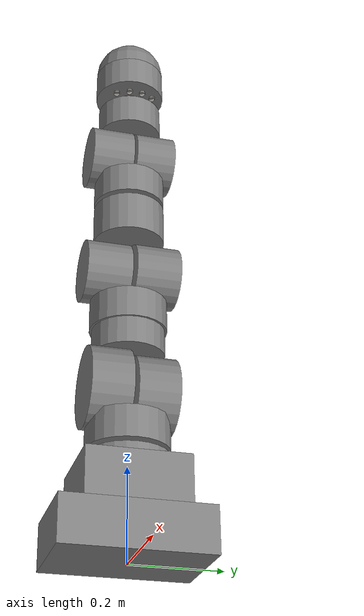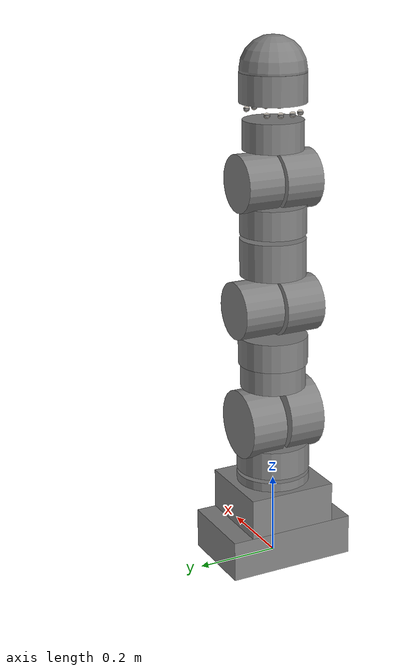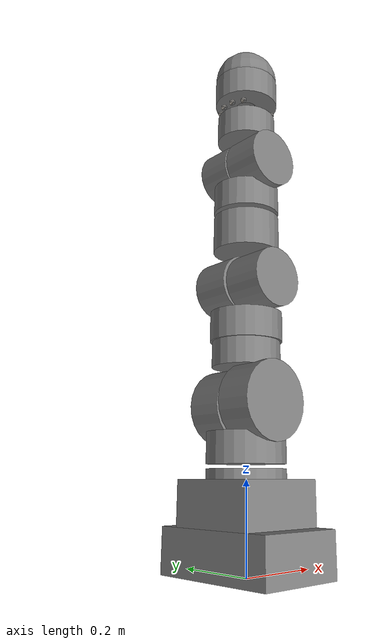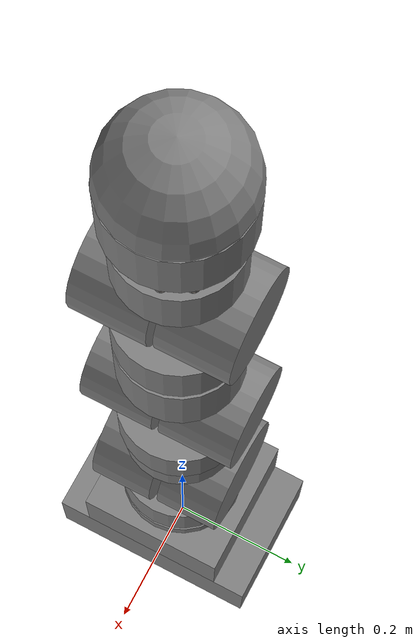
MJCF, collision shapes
<?xml version='1.0' encoding='utf-8'?>
<mujoco model="F&amp;P Robotics P-Rob3">

  <compiler angle="radian" autolimits="true" balanceinertia="false" discardvisual="false" />
  <option gravity="0 0 -9.81" timestep="0.008" iterations="50" integrator="implicitfast" />
  <asset>
    <mesh name="base_link_0" file="meshes/base_link_0.obj" />
    <mesh name="base_link_1" file="meshes/base_link_1.obj" />
    <mesh name="base_link_2" file="meshes/base_link_2.obj" />
    <mesh name="base_link_3" file="meshes/base_link_3.obj" />
    <mesh name="link_1_2_0" file="meshes/link_1_2_0.obj" />
    <mesh name="link_1_2_1" file="meshes/link_1_2_1.obj" />
    <mesh name="link_1_2_2" file="meshes/link_1_2_2.obj" />
    <mesh name="link_1_2_3" file="meshes/link_1_2_3.obj" />
    <mesh name="link_2_3_0" file="meshes/link_2_3_0.obj" />
    <mesh name="link_2_3_1" file="meshes/link_2_3_1.obj" />
    <mesh name="link_2_3_2" file="meshes/link_2_3_2.obj" />
    <mesh name="link_3_4_0" file="meshes/link_3_4_0.obj" />
    <mesh name="link_3_4_1" file="meshes/link_3_4_1.obj" />
    <mesh name="link_3_4_2" file="meshes/link_3_4_2.obj" />
    <mesh name="link_3_4_3" file="meshes/link_3_4_3.obj" />
    <mesh name="link_4_5_0" file="meshes/link_4_5_0.obj" />
    <mesh name="link_4_5_1" file="meshes/link_4_5_1.obj" />
    <mesh name="link_4_5_2" file="meshes/link_4_5_2.obj" />
    <mesh name="link_5_6_0" file="meshes/link_5_6_0.obj" />
    <mesh name="link_5_6_1" file="meshes/link_5_6_1.obj" />
    <mesh name="link_5_6_2" file="meshes/link_5_6_2.obj" />
    <mesh name="link_6_top_0" file="meshes/link_6_top_0.obj" />
    <texture name="button_tex_1" type="2d" file="textures/button_1.png" />
    <texture name="button_tex_2" type="2d" file="textures/button_2.png" />
    <texture name="button_tex_3" type="2d" file="textures/button_3.png" />
    <texture name="button_tex_4" type="2d" file="textures/button_4.png" />
    <material name="main" rgba="0.98 0.98 0.98 1" shininess="0.65" specular="0.25" />
    <material name="secondary" rgba="0.036 0.3 0.615 1" shininess="0.65" specular="0.25" />
    <material name="rubber" rgba="0.025 0.025 0.025 1" shininess="0.9" specular="0.25" />
    <material name="metal" rgba="0.7 0.7 0.7 1" shininess="0.3" specular="0.25" />
    <material name="button_mat_1" texture="button_tex_1" shininess="0" specular="0" />
    <material name="button_mat_2" texture="button_tex_2" shininess="0" specular="0" />
    <material name="button_mat_3" texture="button_tex_3" shininess="0" specular="0" />
    <material name="button_mat_4" texture="button_tex_4" shininess="0" specular="0" />
  <mesh name="grip_link_0" file="meshes/grip_link_0.obj" /><mesh name="grip_link_1" file="meshes/grip_link_1.obj" /><mesh name="grip_link_2" file="meshes/grip_link_2.obj" /></asset>
  <worldbody>
    <body name="base_link">
      <inertial pos="-0.001 0.004 0.094" mass="7.7251" diaginertia="0.1572 0.1296 0.0607" />
      <geom name="base_link_0_visual" type="mesh" mesh="base_link_0" material="main" contype="0" conaffinity="0" group="2" />
      <geom name="base_link_1_visual" type="mesh" mesh="base_link_1" material="secondary" contype="0" conaffinity="0" group="2" />
      <geom name="base_link_2_visual" type="mesh" mesh="base_link_2" material="secondary" contype="0" conaffinity="0" group="2" />
      <geom name="base_link_3_visual" type="mesh" mesh="base_link_3" material="main" contype="0" conaffinity="0" group="2" />
      <geom name="base_col_cyl" type="cylinder" pos="0 0 0.173" size="0.09 0.05" group="3" />
      <geom name="base_col_box0" type="box" pos="0 0 0.051" size="0.105 0.16 0.05" group="3" />
      <geom name="base_col_box1" type="box" pos="0 0 0.151" size="0.105 0.11 0.05" group="3" />
      <body name="link_1_2" pos="0 0 0.2305">
        <inertial pos="-0.0004 0.0187 0.0967" mass="3.8021" diaginertia="0.0675 0.0669 0.0081" />
        <geom name="link_1_2_0_visual" type="mesh" mesh="link_1_2_0" material="secondary" contype="0" conaffinity="0" group="2" />
        <geom name="link_1_2_1_visual" type="mesh" mesh="link_1_2_1" material="main" contype="0" conaffinity="0" group="2" />
        <geom name="link_1_2_2_visual" type="mesh" mesh="link_1_2_2" material="main" contype="0" conaffinity="0" group="2" />
        <geom name="link_1_2_3_visual" type="mesh" mesh="link_1_2_3" material="secondary" contype="0" conaffinity="0" group="2" />
        <geom name="link_1_2_col_0" type="cylinder" pos="0 0 0.037" size="0.09 0.035" group="3" />
        <geom name="link_1_2_col_1" type="cylinder" pos="0 0.05 0.13" size="0.085 0.045" group="3" quat="0.7071055907 -0.7071079716 -0 -0" />
        <joint name="joint1" type="hinge" pos="0 0 -0.0185" axis="0 0 1" range="-2.96 2.96" limited="true" damping="0.0" frictionloss="0.0" />
        <body name="link_2_3" pos="0 0 0.277">
          <inertial pos="0.0005 -0.0285 0.0538" mass="4.0206" diaginertia="0.2185 0.2154 0.0093" />
          <geom name="link_2_3_0_visual" type="mesh" mesh="link_2_3_0" material="secondary" contype="0" conaffinity="0" group="2" />
          <geom name="link_2_3_1_visual" type="mesh" mesh="link_2_3_1" material="main" contype="0" conaffinity="0" group="2" />
          <geom name="link_2_3_2_visual" type="mesh" mesh="link_2_3_2" material="main" contype="0" conaffinity="0" group="2" />
          <geom name="link_2_3_col_0" type="cylinder" pos="0 -0.05 -0.14" size="0.09 0.045" group="3" quat="0.7071055907 -0.7071079716 -0 -0" />
          <geom name="link_2_3_col_1" type="cylinder" pos="0 0 -0.03" size="0.08 0.03" group="3" />
          <geom name="link_2_3_col_2" type="cylinder" pos="0 -0.055 0.14" size="0.07 0.05" group="3" quat="0.7071055907 -0.7071079716 -0 -0" />
          <geom name="link_2_3_col_3" type="cylinder" pos="0 0 0.035" size="0.085 0.035" group="3" />
          <joint name="joint2" type="hinge" pos="0 0 -0.145" axis="0 1 0" range="-1.91 1.91" limited="true" damping="0.0" frictionloss="0.0" />
          <body name="link_3_4" pos="0 0 0.3145">
            <inertial pos="0 0.0191 -0.0816" mass="1.771" diaginertia="0.0244 0.0227 0.004" />
            <geom name="link_3_4_0_visual" type="mesh" mesh="link_3_4_0" material="main" contype="0" conaffinity="0" group="2" />
            <geom name="link_3_4_1_visual" type="mesh" mesh="link_3_4_1" material="secondary" contype="0" conaffinity="0" group="2" />
            <geom name="link_3_4_2_visual" type="mesh" mesh="link_3_4_2" material="secondary" contype="0" conaffinity="0" group="2" />
            <geom name="link_3_4_3_visual" type="mesh" mesh="link_3_4_3" material="main" contype="0" conaffinity="0" group="2" />
            <geom name="link_3_4_col_0" type="cylinder" pos="0 0.055 -0.17" size="0.07 0.05" group="3" quat="0.7071055907 -0.7071079716 -0 -0" />
            <geom name="link_3_4_col_1" type="cylinder" pos="0 0 -0.047" size="0.08 0.045" group="3" />
            <joint name="joint3" type="hinge" pos="0 0 -0.1695" axis="0 1 0" range="-2.0 2.0" limited="true" damping="0.0" frictionloss="0.0" />
            <body name="link_4_5" pos="0 0 0.00650001">
              <inertial pos="-0.0006 0.0204 0.0973" mass="1.5869" diaginertia="0.0256 0.0246 0.003" />
              <geom name="link_4_5_0_visual" type="mesh" mesh="link_4_5_0" material="main" contype="0" conaffinity="0" group="2" />
              <geom name="link_4_5_1_visual" type="mesh" mesh="link_4_5_1" material="secondary" contype="0" conaffinity="0" group="2" />
              <geom name="link_4_5_2_visual" type="mesh" mesh="link_4_5_2" material="main" contype="0" conaffinity="0" group="2" />
              <geom name="link_4_5_col_0" type="cylinder" pos="0 0 0.037" size="0.08 0.035" group="3" />
              <geom name="link_4_5_col_1" type="cylinder" pos="0 0.05 0.13" size="0.069 0.045" group="3" quat="0.7071055907 -0.7071079716 -0 -0" />
              <joint name="joint4" type="hinge" pos="0 0 -0.01200001" axis="0 0 1" range="-2.95 2.95" limited="true" damping="0.0" frictionloss="0.0" />
              <body name="link_5_6" pos="0 0 0.268">
                <inertial pos="-0.0007 -0.0177 -0.0654" mass="1.5372" diaginertia="0.0139 0.0127 0.0031" />
                <geom name="link_5_6_0_visual" type="mesh" mesh="link_5_6_0" material="main" contype="0" conaffinity="0" group="2" />
                <geom name="link_5_6_1_visual" type="mesh" mesh="link_5_6_1" material="secondary" contype="0" conaffinity="0" group="2" />
                <geom name="link_5_6_2_visual" type="mesh" mesh="link_5_6_2" material="main" contype="0" conaffinity="0" group="2" />
                <geom name="link_5_6_col_0" type="cylinder" pos="0 -0.05 -0.14" size="0.071 0.0475" group="3" quat="0.7071055907 -0.7071079716 -0 -0" />
                <geom name="link_5_6_col_1" type="cylinder" pos="0 0 -0.03" size="0.073 0.035" group="3" />
                <joint name="joint5" type="hinge" pos="0 0 -0.1345" axis="0 1 0" range="-2.0 2.0" limited="true" damping="0.0" frictionloss="0.0" />
                <body name="link_6_top" pos="0 0 0.01525">
                  <inertial pos="-0.001 0 0.00625" mass="0.5164" diaginertia="0.0009 0.0009 0.0009" />
                  <geom name="link_6_top_0_visual" type="mesh" mesh="link_6_top_0" material="main" contype="0" conaffinity="0" group="2" />
                  <joint name="joint6" type="hinge" pos="0 0 -0.02075" axis="0 0 1" range="-2.96 2.96" limited="true" damping="0.0" frictionloss="0.0" />
                  <geom name="button_0_visual" type="cylinder" pos="-0.0501799 0.0432036 0.0089" quat="0.82022696 0.40449211 -0.40449211 -1.767685966" size="0.007 0.0025" material="button_mat_1" contype="0" conaffinity="0" group="2" />
                  <geom name="button_0_contact" type="cylinder" pos="-0.0501799 0.0432036 0.0089" quat="0.82022696 0.40449211 -0.40449211 -1.767685966" size="0.007 0.0025" group="3" rgba="0.2 0.2 0.2 0.0" />
                  <site name="button_0_site" pos="-0.0501799 0.0432036 0.0089" size="0.007 0.0025" type="cylinder" />
                  <geom name="button_1_visual" type="cylinder" pos="-0.0643129 0.0151085 0.0089" quat="0.6776602019 0.5199887743 -0.5199887743 -1.950442763" size="0.007 0.0025" material="button_mat_2" contype="0" conaffinity="0" group="2" />
                  <geom name="button_1_contact" type="cylinder" pos="-0.0643129 0.0151085 0.0089" quat="0.6776602019 0.5199887743 -0.5199887743 -1.950442763" size="0.007 0.0025" group="3" rgba="0.2 0.2 0.2 0.0" />
                  <site name="button_1_site" pos="-0.0643129 0.0151085 0.0089" size="0.007 0.0025" type="cylinder" />
                  <geom name="button_2_visual" type="cylinder" pos="-0.0642012 -0.0156443 0.0089" quat="0.4893503314 0.6166588413 -0.6166588413 -2.231409384" size="0.007 0.0025" material="button_mat_3" contype="0" conaffinity="0" group="2" />
                  <geom name="button_2_contact" type="cylinder" pos="-0.0642012 -0.0156443 0.0089" quat="0.4893503314 0.6166588413 -0.6166588413 -2.231409384" size="0.007 0.0025" group="3" rgba="0.2 0.2 0.2 0.0" />
                  <site name="button_2_site" pos="-0.0642012 -0.0156443 0.0089" size="0.007 0.0025" type="cylinder" />
                  <geom name="button_3_visual" type="cylinder" pos="-0.0505297 -0.0431944 0.0089" quat="0.3090652636 0.672487421 -0.672487421 -2.542087332" size="0.007 0.0025" material="button_mat_4" contype="0" conaffinity="0" group="2" />
                  <geom name="button_3_contact" type="cylinder" pos="-0.0505297 -0.0431944 0.0089" quat="0.3090652636 0.672487421 -0.672487421 -2.542087332" size="0.007 0.0025" group="3" rgba="0.2 0.2 0.2 0.0" />
                  <site name="button_3_site" pos="-0.0505297 -0.0431944 0.0089" size="0.007 0.0025" type="cylinder" />
                  <geom name="button_4_visual" type="cylinder" pos="0.0502593 -0.0432647 0.0089" quat="0.82022696 0.40449211 -0.40449211 -1.767685966" size="0.007 0.0025" material="button_mat_1" contype="0" conaffinity="0" group="2" />
                  <geom name="button_4_contact" type="cylinder" pos="0.0502593 -0.0432647 0.0089" quat="0.82022696 0.40449211 -0.40449211 -1.767685966" size="0.007 0.0025" group="3" rgba="0.2 0.2 0.2 0.0" />
                  <site name="button_4_site" pos="0.0502593 -0.0432647 0.0089" size="0.007 0.0025" type="cylinder" />
                  <geom name="button_5_visual" type="cylinder" pos="0.064216 -0.0150831 0.0089" quat="0.6776602019 0.5199887743 -0.5199887743 -1.950442763" size="0.007 0.0025" material="button_mat_2" contype="0" conaffinity="0" group="2" />
                  <geom name="button_5_contact" type="cylinder" pos="0.064216 -0.0150831 0.0089" quat="0.6776602019 0.5199887743 -0.5199887743 -1.950442763" size="0.007 0.0025" group="3" rgba="0.2 0.2 0.2 0.0" />
                  <site name="button_5_site" pos="0.064216 -0.0150831 0.0089" size="0.007 0.0025" type="cylinder" />
                  <geom name="button_6_visual" type="cylinder" pos="0.0642009 0.0156447 0.0089" quat="0.4893503314 0.6166588413 -0.6166588413 -2.231409384" size="0.007 0.0025" material="button_mat_3" contype="0" conaffinity="0" group="2" />
                  <geom name="button_6_contact" type="cylinder" pos="0.0642009 0.0156447 0.0089" quat="0.4893503314 0.6166588413 -0.6166588413 -2.231409384" size="0.007 0.0025" group="3" rgba="0.2 0.2 0.2 0.0" />
                  <site name="button_6_site" pos="0.0642009 0.0156447 0.0089" size="0.007 0.0025" type="cylinder" />
                  <geom name="button_7_visual" type="cylinder" pos="0.0503023 0.042999 0.0089" quat="0.3090652636 0.672487421 -0.672487421 -2.542087332" size="0.007 0.0025" material="button_mat_4" contype="0" conaffinity="0" group="2" />
                  <geom name="button_7_contact" type="cylinder" pos="0.0503023 0.042999 0.0089" quat="0.3090652636 0.672487421 -0.672487421 -2.542087332" size="0.007 0.0025" group="3" rgba="0.2 0.2 0.2 0.0" />
                  <site name="button_7_site" pos="0.0503023 0.042999 0.0089" size="0.007 0.0025" type="cylinder" />
                  <body name="right_hand" pos="0 0 0.07775">
                    <inertial pos="0.0002 0.0008 0.0238" mass="1.525" diaginertia="0.01444 0.01389 0.00338" />
                    <geom name="grip_link_0_visual" type="mesh" mesh="grip_link_0" material="main" contype="0" conaffinity="0" group="2" />
                    <geom name="grip_link_1_visual" type="mesh" mesh="grip_link_1" material="secondary" contype="0" conaffinity="0" group="2" />
                    <geom name="grip_link_2_visual" type="mesh" mesh="grip_link_2" material="rubber" contype="0" conaffinity="0" group="2" />
                    <geom name="gripper_col_sphere" type="sphere" pos="0 0 0.026" size="0.08" group="3" />
                    <geom name="gripper_col_cylinder" type="cylinder" pos="0 1.34683e-07 -0.014" size="0.08 0.035" group="3" />
                    </body>
                </body>
              </body>
            </body>
          </body>
        </body>
      </body>
    </body>
  </worldbody>
  <actuator>
    <motor name="motor_1" joint="joint1" ctrlrange="-159.6959 159.6959" ctrllimited="true" />
    <motor name="motor_2" joint="joint2" ctrlrange="-159.6959 159.6959" ctrllimited="true" />
    <motor name="motor_3" joint="joint3" ctrlrange="-80.1455 80.1455" ctrllimited="true" />
    <motor name="motor_4" joint="joint4" ctrlrange="-30.1005 30.1005" ctrllimited="true" />
    <motor name="motor_5" joint="joint5" ctrlrange="-30.1005 30.1005" ctrllimited="true" />
    <motor name="motor_6" joint="joint6" ctrlrange="-16.4816 16.4816" ctrllimited="true" />
    </actuator>
  <sensor>
    <jointpos name="motor_1_sensor" joint="joint1" />
    <jointpos name="motor_2_sensor" joint="joint2" />
    <jointpos name="motor_3_sensor" joint="joint3" />
    <jointpos name="motor_4_sensor" joint="joint4" />
    <jointpos name="motor_5_sensor" joint="joint5" />
    <jointpos name="motor_6_sensor" joint="joint6" />
    <touch name="button_0_touch" site="button_0_site" />
    <touch name="button_1_touch" site="button_1_site" />
    <touch name="button_2_touch" site="button_2_site" />
    <touch name="button_3_touch" site="button_3_site" />
    <touch name="button_4_touch" site="button_4_site" />
    <touch name="button_5_touch" site="button_5_site" />
    <touch name="button_6_touch" site="button_6_site" />
    <touch name="button_7_touch" site="button_7_site" />
  </sensor>
</mujoco>
